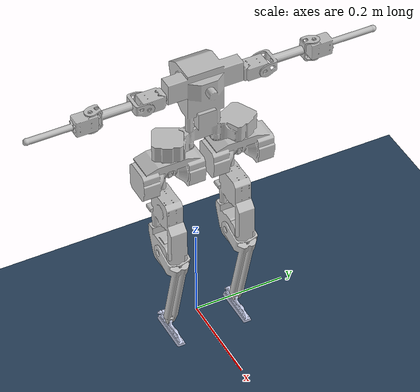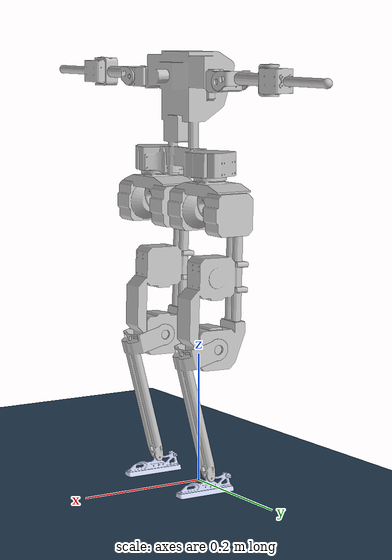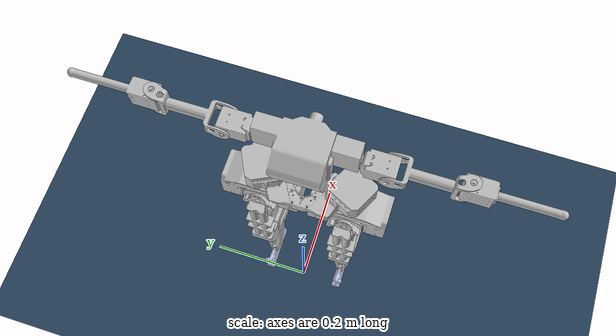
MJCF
<mujoco model="bruce scene">
    <include file="bruce.xml"/>

    <statistic center="0 0 1" extent="1.8"/>

    <option timestep="0.001" gravity="0 0 -9.81" tolerance="1e-05" cone="elliptic" jacobian="dense" solver="Newton"  noslip_iterations="10" integrator="Euler" iterations="30" impratio="10.0"/>
    <option>
      <flag override="enable" gravity="enable"/>
    </option>

    <default>
      <joint limited="false" damping="2" armature="0.1" stiffness="0" frictionloss="0.2"/>
      <motor gear="1 0 0 0 0 0" ctrllimited="false" ctrlrange="-100 100"/>
    </default>

    <visual>
      <headlight diffuse="0.6 0.6 0.6" ambient="0.3 0.3 0.3" specular="0 0 0"/>
      <rgba haze="0.15 0.25 0.35 1"/>
      <global azimuth="160" elevation="-20"/>
    </visual>

    <asset>
      <texture type="skybox" builtin="gradient" rgb1="0.3 0.5 0.7" rgb2="0 0 0" width="512" height="3072"/>
      <texture type="2d" name="groundplane" builtin="checker" mark="edge" rgb1="0.2 0.3 0.4" rgb2="0.1 0.2 0.3"
        markrgb="0.8 0.8 0.8" width="300" height="300"/>
      <material name="groundplane" texture="groundplane" texuniform="true" texrepeat="5 5" reflectance="0.2"/>
    </asset>

    <worldbody>
      <light pos="0 0 3.5" dir="0 0 -1" directional="true"/>
      <geom name="floor" size="0 0 0.05" type="plane" material="groundplane"/>
    </worldbody>

  </mujoco>

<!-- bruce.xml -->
<mujoco model="bruce">
  <compiler angle="radian" meshdir="../Gazebo/models/bruce/meshes" autolimits="true"/>

  <asset>
    <mesh name="base_link" file="base_link.STL"/>
    <mesh name="hip_yaw_link_r" file="hip_yaw_link_r.STL"/>
    <mesh name="hip_roll_link_r" file="hip_roll_link_r.STL"/>
    <mesh name="hip_pitch_link_r" file="hip_pitch_link_r.STL"/>
    <mesh name="knee_pitch_link_r" file="knee_pitch_link_r.STL"/>
    <mesh name="ankle_pitch_link_r" file="ankle_pitch_link_r.STL"/>
    <mesh name="hip_yaw_link_l" file="hip_yaw_link_l.STL"/>
    <mesh name="hip_roll_link_l" file="hip_roll_link_l.STL"/>
    <mesh name="hip_pitch_link_l" file="hip_pitch_link_l.STL"/>
    <mesh name="knee_pitch_link_l" file="knee_pitch_link_l.STL"/>
    <mesh name="ankle_pitch_link_l" file="ankle_pitch_link_l.STL"/>
    <mesh name="shoulder_pitch_link_r" file="shoulder_pitch_link_r.STL"/>
    <mesh name="shoulder_roll_link_r" file="shoulder_roll_link_r.STL"/>
    <mesh name="elbow_pitch_link_r" file="elbow_pitch_link_r.STL"/>
    <mesh name="shoulder_pitch_link_l" file="shoulder_pitch_link_l.STL"/>
    <mesh name="shoulder_roll_link_l" file="shoulder_roll_link_l.STL"/>
    <mesh name="elbow_pitch_link_l" file="elbow_pitch_link_l.STL"/>
  </asset>
  <worldbody>
    <body name="base_link" pos="0 0 0.47">
      <freejoint/>
      <inertial pos="0.02259605 -0.00011305 0.06140054" mass="1.31688922" diaginertia="0.0133543 0.01023631 0.005471"/>
      <geom name="body" type="mesh" mesh="base_link" rgba="0.752941176 0.752941176 0.752941176 1"/>

      <!-- RIGHT LEG -->
      <body name="hip_yaw_link_r" pos="0.029216 -0.0758557 -0.039765" quat="0.707107 0 0 -0.707107">
        <inertial pos="2.71e-06 -0.00024824 0.00522427" quat="0.517691 0.482114 0.518083 0.480784" mass="0.637563" diaginertia="0.0016174 0.00152078 0.000485406"/>
        <joint name="hip_yaw_r" pos="0 0 0" axis="0 0 1" limited="true" range="-3.1415 3.1415"/>
        <geom type="mesh" rgba="0.752941 0.752941 0.752941 1" mesh="hip_yaw_link_r"/>
        <body name="hip_roll_link_r" quat="0.5 -0.5 0.5 0.5">
          <inertial pos="-1.51e-07 0 6.88e-06" mass="0.05" diaginertia="1e-05 1e-05 1e-05"/>
          <joint name="hip_roll_r" pos="0 0 0" axis="0 0 1" limited="true" range="-3.1415 3.1415"/>
          <geom type="mesh" rgba="0.752941 0.752941 0.752941 1" mesh="hip_roll_link_r"/>
          <body name="hip_pitch_link_r" quat="0.707107 0.707107 0 0">
            <inertial pos="0.140714 -0.0086817 0.00167429" quat="-0.0210718 0.710934 0.00543456 0.702922" mass="0.72849" diaginertia="0.0181996 0.0179488 0.000479326"/>
            <joint name="hip_pitch_r" pos="0 0 0" axis="0 0 1" limited="true" range="-3.1415 3.1415"/>
            <geom type="mesh" rgba="0.752941 0.752941 0.752941 1" mesh="hip_pitch_link_r"/>
            <body name="knee_pitch_link_r" pos="0.204949 0 0">
              <inertial pos="0.0729308 0.0174645 0.00216432" quat="-0.0124752 0.71085 -0.0538621 0.701167" mass="0.0956654" diaginertia="0.00108397 0.00102192 0.000106307"/>
              <joint name="knee_pitch_r" pos="0 0 0" axis="0 0 1" limited="true" range="-3.1415 3.1415"/>
              <geom type="mesh" rgba="0.752941 0.752941 0.752941 1" mesh="knee_pitch_link_r"/>
              <body name="ankle_pitch_link_r" pos="0.199881 0 0">
                <inertial pos="0.0120775 0.0019746 0.00029511" quat="0.443128 0.545146 -0.456612 0.545855" mass="0.0276265" diaginertia="2.58838e-05 2.09859e-05 5.64035e-06"/>
                <joint name="ankle_pitch_r" pos="0 0 0" axis="0 0 1" limited="true" range="-3.1415 3.1415"/>
                <geom type="mesh" rgba="0.792157 0.819608 0.933333 1" mesh="ankle_pitch_link_r"/>
              </body>
            </body>
          </body>
        </body>
      </body>
      <!-- LEFT LEG -->
      <body name="hip_yaw_link_l" pos="0.029216 0.0758557 -0.039765" quat="0.707107 0 0 -0.707107">
        <inertial pos="0 -0.00020849 0.00528032" quat="0.518836 0.480432 0.518756 0.480506" mass="0.637386" diaginertia="0.00161868 0.00152047 0.0004852"/>
        <joint name="hip_yaw_l" pos="0 0 0" axis="0 0 1" limited="true" range="-3.1415 3.1415"/>
        <geom type="mesh" rgba="0.752941 0.752941 0.752941 1" mesh="hip_yaw_link_l"/>
        <body name="hip_roll_link_l" quat="0.500001 -0.499999 0.500001 0.499999">
          <inertial pos="-1.51e-07 0 6.88e-06" mass="0.05" diaginertia="1e-05 1e-05 1e-05"/>
          <joint name="hip_roll_l" pos="0 0 0" axis="0 0 1" limited="true" range="-3.1415 3.1415"/>
          <geom type="mesh" rgba="0.752941 0.752941 0.752941 1" mesh="hip_roll_link_l"/>
          <body name="hip_pitch_link_l" quat="0.707107 0.707107 0 0">
            <inertial pos="0.142447 -0.00832054 0.00049317" quat="-0.002203 0.702817 0.024599 0.710942" mass="0.720628" diaginertia="0.018195 0.0179541 0.000461885"/>
            <joint name="hip_pitch_l" pos="0 0 0" axis="0 0 1" limited="true" range="-3.1415 3.1415"/>
            <geom type="mesh" rgba="0.752941 0.752941 0.752941 1" mesh="hip_pitch_link_l"/>
            <body name="knee_pitch_link_l" pos="0.204949 0 0">
              <inertial pos="0.0730996 0.0178102 -0.00219767" quat="0.0505999 0.70058 0.00930476 0.711716" mass="0.0952654" diaginertia="0.00107995 0.00101966 0.000104635"/>
              <joint name="knee_pitch_l" pos="0 0 0" axis="0 0 1" limited="true" range="-3.1415 3.1415"/>
              <geom type="mesh" rgba="0.752941 0.752941 0.752941 1" mesh="knee_pitch_link_l"/>
              <body name="ankle_pitch_link_l" pos="0.199881 0 0">
                <inertial pos="0.0123398 0.00253004 -0.00030441" quat="0.455603 0.546571 -0.442281 0.545962" mass="0.0274829" diaginertia="2.60237e-05 2.09939e-05 5.69233e-06"/>
                <joint name="ankle_pitch_l" pos="0 0 0" axis="0 0 1" limited="true" range="-3.1415 3.1415"/>
                <geom type="mesh" rgba="0.792157 0.819608 0.933333 1" mesh="ankle_pitch_link_l"/>
              </body>
            </body>
          </body>
        </body>
      </body>
      <!-- RIGHT ARM -->
      <body name="shoulder_pitch_link_r" pos="0.029216 -0.12375 0.152985" quat="0.5 0.5 -0.5 0.5">
        <inertial pos="0 -0.00038323 -0.0141368" quat="0.999984 0.0057278 0 0" mass="0.0493169" diaginertia="2.507e-05 2.40321e-05 8.31794e-06"/>
        <joint name="shoulder_pitch_r" pos="0 0 0" axis="0 0 1" limited="true" range="-3.1415 3.1415"/>
        <geom type="mesh" rgba="0.752941 0.752941 0.752941 1" mesh="shoulder_pitch_link_r"/>
        <body name="shoulder_roll_link_r" quat="0.5 0.5 -0.5 0.5">
          <inertial pos="0.0570939 -0.00419463 0.00093738" quat="-0.205082 0.694437 -0.169487 0.66856" mass="0.024" diaginertia="0.000126403 0.000125807 7.29e-06"/>
          <joint name="shoulder_roll_r" pos="0 0 0" axis="0 0 1" limited="true" range="-3.1415 3.1415"/>
          <geom type="mesh" rgba="0.752941 0.752941 0.752941 1" mesh="shoulder_roll_link_r"/>
          <body name="elbow_pitch_link_r" pos="0.1146 -0.005 0.005" quat="0.707107 0.707107 0 0">
            <inertial pos="0.0217884 0 0.0003604" quat="0.499291 0.500708 0.500708 0.499291" mass="0.0524404" diaginertia="7.261e-05 7.10305e-05 7.52949e-06"/>
            <joint name="elbow_pitch_r" pos="0 0 0" axis="0 0 1" limited="true" range="-3.1415 3.1415"/>
            <geom type="mesh" rgba="0.752941 0.752941 0.752941 1" mesh="elbow_pitch_link_r"/>
          </body>
        </body>
      </body>
      <!-- LEFT ARM -->
      <body name="shoulder_pitch_link_l" pos="0.029216 0.12375 0.152985" quat="0.5 -0.5 0.5 0.5">
        <inertial pos="0 0.00038323 -0.0141368" quat="0.999984 -0.0057278 0 0" mass="0.0493169" diaginertia="2.507e-05 2.40321e-05 8.31794e-06"/>
        <joint name="shoulder_pitch_l" pos="0 0 0" axis="0 0 1" limited="true" range="-3.1415 3.1415"/>
        <geom type="mesh" rgba="0.752941 0.752941 0.752941 1" mesh="shoulder_pitch_link_l"/>
        <body name="shoulder_roll_link_l" quat="0.5 0.5 -0.5 0.5">
          <inertial pos="0.0570939 0.00419463 0.00094155" quat="0.207025 0.693936 0.171489 0.667971" mass="0.0313652" diaginertia="0.000165195 0.000164406 9.52871e-06"/>
          <joint name="shoulder_roll_l" pos="0 0 0" axis="0 0 1" limited="true" range="-3.1415 3.1415"/>
          <geom type="mesh" rgba="0.752941 0.752941 0.752941 1" mesh="shoulder_roll_link_l"/>
          <body name="elbow_pitch_link_l" pos="0.1146 0.005 0.005" quat="0.707107 -0.707107 0 0">
            <inertial pos="0.0217884 0 0.0003604" quat="0.499291 0.500708 0.500708 0.499291" mass="0.0524404" diaginertia="7.261e-05 7.10305e-05 7.52949e-06"/>
            <joint name="elbow_pitch_l" pos="0 0 0" axis="0 0 1" limited="true" range="-3.1415 3.1415"/>
            <geom type="mesh" rgba="0.752941 0.752941 0.752941 1" mesh="elbow_pitch_link_l"/>
          </body>
        </body>
      </body>
    </body>
  </worldbody>

  <actuator>
    <motor name="hip_yaw_r" joint='hip_yaw_r' gear="1 0 0 0 0 0" ctrlrange='-200 200'/>
    <motor name="hip_roll_r" joint='hip_roll_r' gear="1 0 0 0 0 0" ctrlrange='-200 200'/>
    <motor name="hip_pitch_r" joint='hip_pitch_r' gear="1 0 0 0 0 0" ctrlrange='-200 200'/>
    <motor name="knee_pitch_r" joint='knee_pitch_r' gear="1 0 0 0 0 0" ctrlrange='-200 200'/>
    <motor name="ankle_pitch_r" joint='ankle_pitch_r' gear="1 0 0 0 0 0" ctrlrange='-200 200'/>
    <motor name="hip_yaw_l" joint='hip_yaw_l' gear="1 0 0 0 0 0" ctrlrange='-200 200'/>
    <motor name="hip_roll_l" joint='hip_roll_l' gear="1 0 0 0 0 0" ctrlrange='-200 200'/>
    <motor name="hip_pitch_l" joint='hip_pitch_l' gear="1 0 0 0 0 0" ctrlrange='-200 200'/>
    <motor name="knee_pitch_l" joint='knee_pitch_l' gear="1 0 0 0 0 0" ctrlrange='-200 200'/>
    <motor name="ankle_pitch_l" joint='ankle_pitch_l' gear="1 0 0 0 0 0" ctrlrange='-200 200'/>
    <motor name="shoulder_pitch_r" joint='shoulder_pitch_r' gear="1 0 0 0 0 0" ctrlrange='-200 200'/>
    <motor name="shoulder_roll_r" joint='shoulder_roll_r' gear="1 0 0 0 0 0" ctrlrange='-200 200'/>
    <motor name="elbow_pitch_r" joint='elbow_pitch_r' gear="1 0 0 0 0 0" ctrlrange='-200 200'/>
    <motor name="shoulder_pitch_l" joint='shoulder_pitch_l' gear="1 0 0 0 0 0" ctrlrange='-200 200'/>
    <motor name="shoulder_roll_l" joint='shoulder_roll_l' gear="1 0 0 0 0 0" ctrlrange='-200 200'/>
    <motor name="elbow_pitch_l" joint='elbow_pitch_l' gear="1 0 0 0 0 0" ctrlrange='-200 200'/>
  </actuator>

</mujoco>
